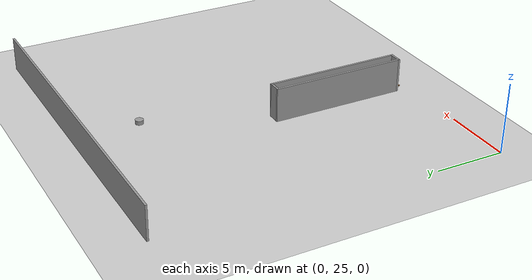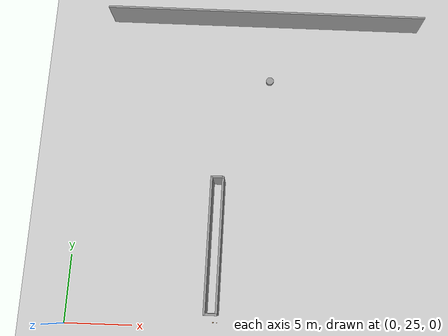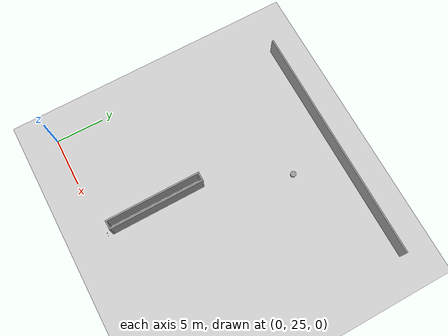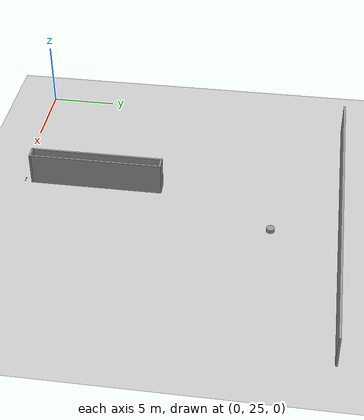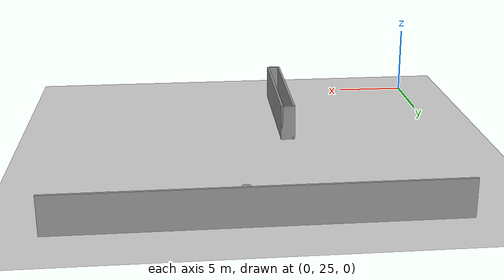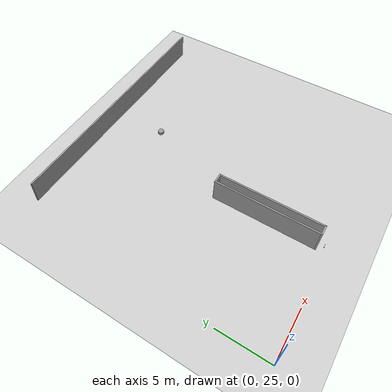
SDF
<sdf version="1.6">
 <world name="default">
  <model name="ground_plane">
   <static>1</static>
   <link name="link">
    <collision name="collision">
     <geometry><plane><normal>0 0 1</normal><size>105 105</size></plane></geometry>
     <surface>
      <contact><collide_bitmask>65535</collide_bitmask></contact>
      <friction><ode><mu>100</mu><mu2>50</mu2></ode></friction>
     </surface>
    </collision>
    <visual name="visual">
     <cast_shadows>0</cast_shadows>
     <geometry><plane><normal>0 0 1</normal><size>105 105</size></plane></geometry>
     <material>
      <script><uri>file://media/materials/scripts/gazebo.material</uri><name>Gazebo/Grey</name></script>
     </material>
    </visual>
   </link>
  </model>
  <model name="wall_25m_5">
   <pose>14.0033 49.3464 0 0 -0 0</pose>
   <link name="Wall_28">
    <collision name="Wall_28_Collision">
     <geometry><box><size>25 0.15 2.5</size></box></geometry>
     <pose>0 0 1.25 0 -0 0</pose>
    </collision>
    <visual name="Wall_28_Visual">
     <pose>0 0 1.25 0 -0 0</pose>
     <geometry><box><size>25 0.15 2.5</size></box></geometry>
     <material>
      <script><uri>file://media/materials/scripts/gazebo.material</uri><name>Gazebo/Grey</name></script>
      <ambient>1 1 1 1</ambient>
     </material>
     <meta><layer>0</layer></meta>
    </visual>
   </link>
   <static>1</static>
  </model>
  <model name="base10x1">
   <pose>10.8397 30.9726 0 0 -0 0</pose>
   <link name="Wall_15">
    <collision name="Wall_15_Collision">
     <geometry><box><size>10 0.15 2.5</size></box></geometry>
     <pose>0 0 1.25 0 -0 0</pose>
    </collision>
    <visual name="Wall_15_Visual">
     <pose>0 0 1.25 0 -0 0</pose>
     <geometry><box><size>10 0.15 2.5</size></box></geometry>
     <material>
      <script><uri>file://media/materials/scripts/gazebo.material</uri><name>Gazebo/Grey</name></script>
      <ambient>1 1 1 1</ambient>
     </material>
     <meta><layer>0</layer></meta>
    </visual>
    <pose>-0.425 0 0 0 -0 1.5708</pose>
   </link>
   <link name="Wall_16">
    <collision name="Wall_16_Collision">
     <geometry><box><size>1 0.15 2.5</size></box></geometry>
     <pose>0 0 1.25 0 -0 0</pose>
    </collision>
    <visual name="Wall_16_Visual">
     <pose>0 0 1.25 0 -0 0</pose>
     <geometry><box><size>1 0.15 2.5</size></box></geometry>
     <material>
      <script><uri>file://media/materials/scripts/gazebo.material</uri><name>Gazebo/Grey</name></script>
      <ambient>1 1 1 1</ambient>
     </material>
     <meta><layer>0</layer></meta>
    </visual>
    <pose>0 4.925 0 0 -0 0</pose>
   </link>
   <link name="Wall_17">
    <collision name="Wall_17_Collision">
     <geometry><box><size>10 0.15 2.5</size></box></geometry>
     <pose>0 0 1.25 0 -0 0</pose>
    </collision>
    <visual name="Wall_17_Visual">
     <pose>0 0 1.25 0 -0 0</pose>
     <geometry><box><size>10 0.15 2.5</size></box></geometry>
     <material>
      <script><uri>file://media/materials/scripts/gazebo.material</uri><name>Gazebo/Grey</name></script>
      <ambient>1 1 1 1</ambient>
     </material>
     <meta><layer>0</layer></meta>
    </visual>
    <pose>0.425 0 0 0 -0 -1.5708</pose>
   </link>
   <link name="Wall_18">
    <collision name="Wall_18_Collision">
     <geometry><box><size>1 0.15 2.5</size></box></geometry>
     <pose>0 0 1.25 0 -0 0</pose>
    </collision>
    <visual name="Wall_18_Visual">
     <pose>0 0 1.25 0 -0 0</pose>
     <geometry><box><size>1 0.15 2.5</size></box></geometry>
     <material>
      <script><uri>file://media/materials/scripts/gazebo.material</uri><name>Gazebo/Grey</name></script>
      <ambient>1 1 1 1</ambient>
     </material>
     <meta><layer>0</layer></meta>
    </visual>
    <pose>0 -4.925 0 0 -0 3.14159</pose>
   </link>
   <static>1</static>
  </model>
  <model name="wood_cube_7_5cm_5">
   <link name="link">
    <pose>0 0 0.0375 0 -0 0</pose>
    <inertial>
     <mass>0.2249</mass>
     <inertia>
      <ixx>0.000210844</ixx>
      <ixy>0</ixy>
      <ixz>0</ixz>
      <iyy>0.000210844</iyy>
      <iyz>0</iyz>
      <izz>0.000210844</izz>
     </inertia>
    </inertial>
    <collision name="collision">
     <geometry><box><size>0.075 0.075 0.075</size></box></geometry>
     <surface>
      <contact>
       <poissons_ratio>0.347</poissons_ratio>
       <elastic_modulus>8.8e+09</elastic_modulus>
       <ode><kp>100000</kp><kd>100</kd><max_vel>100</max_vel><min_depth>0.001</min_depth></ode>
      </contact>
      <friction>
       <torsional>
        <coefficient>1</coefficient>
        <use_patch_radius>0</use_patch_radius>
        <surface_radius>0.01</surface_radius>
       </torsional>
      </friction>
     </surface>
    </collision>
    <visual name="visual">
     <geometry><box><size>0.075 0.075 0.075</size></box></geometry>
     <material>
      <script><uri>file://media/materials/scripts/gazebo.material</uri><name>Gazebo/Wood</name></script>
     </material>
    </visual>
   </link>
   <pose>10.9436 25.4497 -0.001006 0 -0 0</pose>
  </model>
  <model name="wood_cube_5cm_5">
   <link name="link">
    <pose>0 0 0.025 0 -0 0</pose>
    <inertial>
     <mass>0.0565</mass>
     <inertia>
      <ixx>2.35417e-05</ixx>
      <ixy>0</ixy>
      <ixz>0</ixz>
      <iyy>2.35417e-05</iyy>
      <iyz>0</iyz>
      <izz>2.35417e-05</izz>
     </inertia>
    </inertial>
    <collision name="collision">
     <geometry><box><size>0.05 0.05 0.05</size></box></geometry>
     <surface>
      <contact>
       <poissons_ratio>0.347</poissons_ratio>
       <elastic_modulus>8.8e+09</elastic_modulus>
       <ode><kp>100000</kp><kd>1</kd><max_vel>1</max_vel><min_depth>0.001</min_depth></ode>
      </contact>
      <friction>
       <torsional>
        <coefficient>1</coefficient>
        <use_patch_radius>0</use_patch_radius>
        <surface_radius>0.05</surface_radius>
       </torsional>
      </friction>
     </surface>
    </collision>
    <visual name="visual">
     <geometry><box><size>0.05 0.05 0.05</size></box></geometry>
     <material>
      <script><uri>file://media/materials/scripts/gazebo.material</uri><name>Gazebo/Wood</name></script>
     </material>
    </visual>
   </link>
   <pose>11.2217 25.4529 -0.001001 0 -0 0</pose>
  </model>
  <model name="unit_cylinder30x30cm_2_clone_2_clone">
   <link name="link">
    <inertial>
     <mass>1</mass>
     <inertia><ixx>0.145833</ixx><ixy>0</ixy><ixz>0</ixz><iyy>0.145833</iyy><iyz>0</iyz><izz>0.125</izz></inertia>
    </inertial>
    <visual name="visual">
     <geometry><cylinder><radius>0.3</radius><length>0.3</length></cylinder></geometry>
     <material>
      <script><name>Gazebo/Grey</name><uri>file://media/materials/scripts/gazebo.material</uri></script>
      <shader type="vertex"><normal_map>__default__</normal_map></shader>
      <ambient>0.3 0.3 0.3 1</ambient>
      <diffuse>0.7 0.7 0.7 1</diffuse>
      <specular>0.01 0.01 0.01 1</specular>
      <emissive>0 0 0 1</emissive>
     </material>
    </visual>
    <collision name="collision">
     <geometry><cylinder><radius>0.3</radius><length>0.3</length></cylinder></geometry>
     <surface>
      <friction>
       <ode><mu>1</mu><mu2>1</mu2><fdir1>0 0 0</fdir1><slip1>0</slip1><slip2>0</slip2></ode>
       <torsional>
        <coefficient>1</coefficient>
        <patch_radius>0</patch_radius>
        <surface_radius>0</surface_radius>
        <use_patch_radius>1</use_patch_radius>
        <ode><slip>0</slip></ode>
       </torsional>
      </friction>
      <bounce><restitution_coefficient>0</restitution_coefficient><threshold>1e+06</threshold></bounce>
      <contact>
       <collide_without_contact>0</collide_without_contact>
       <collide_without_contact_bitmask>1</collide_without_contact_bitmask>
       <collide_bitmask>1</collide_bitmask>
       <ode>
        <soft_cfm>0</soft_cfm>
        <soft_erp>0.2</soft_erp>
        <kp>1e+13</kp>
        <kd>1</kd>
        <max_vel>0.01</max_vel>
        <min_depth>0</min_depth>
       </ode>
       <bullet>
        <split_impulse>1</split_impulse>
        <split_impulse_penetration_threshold>-0.01</split_impulse_penetration_threshold>
        <soft_cfm>0</soft_cfm>
        <soft_erp>0.2</soft_erp>
        <kp>1e+13</kp>
        <kd>1</kd>
       </bullet>
      </contact>
     </surface>
    </collision>
   </link>
   <static>0</static>
   <pose>14.5018 44.4272 0.149805 -0 -0 -0</pose>
  </model>
 </world>
</sdf>
